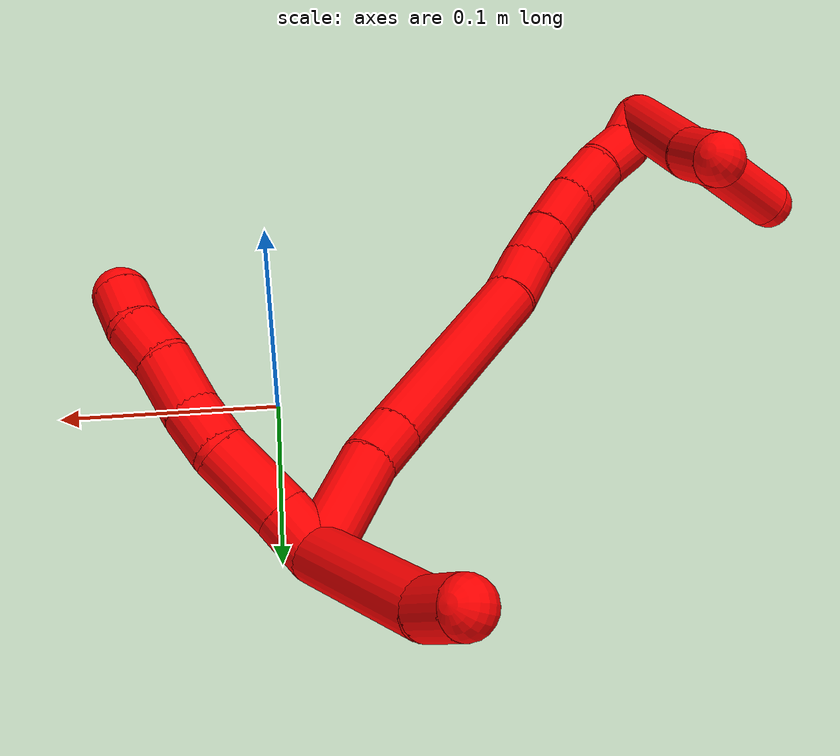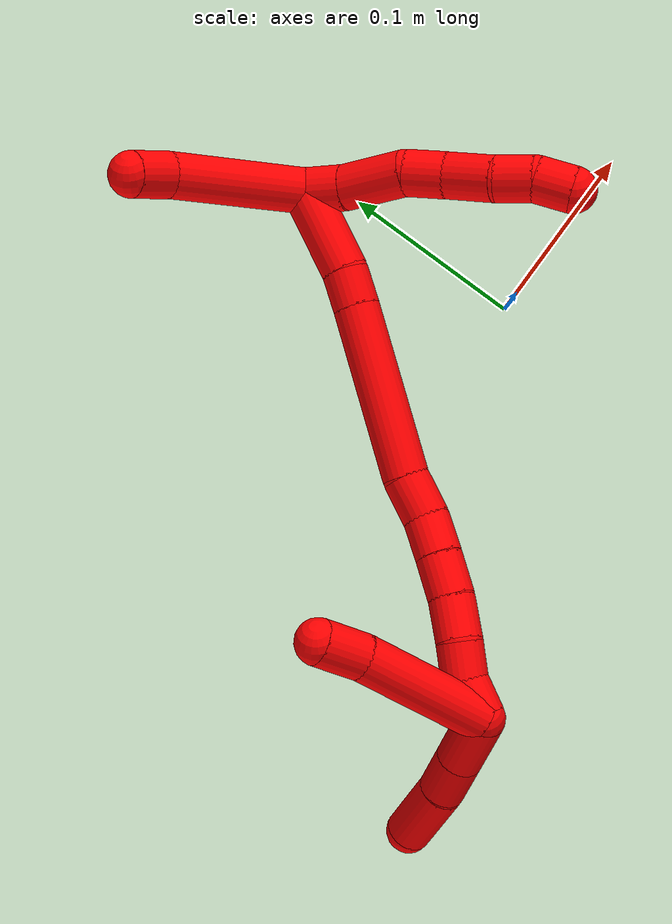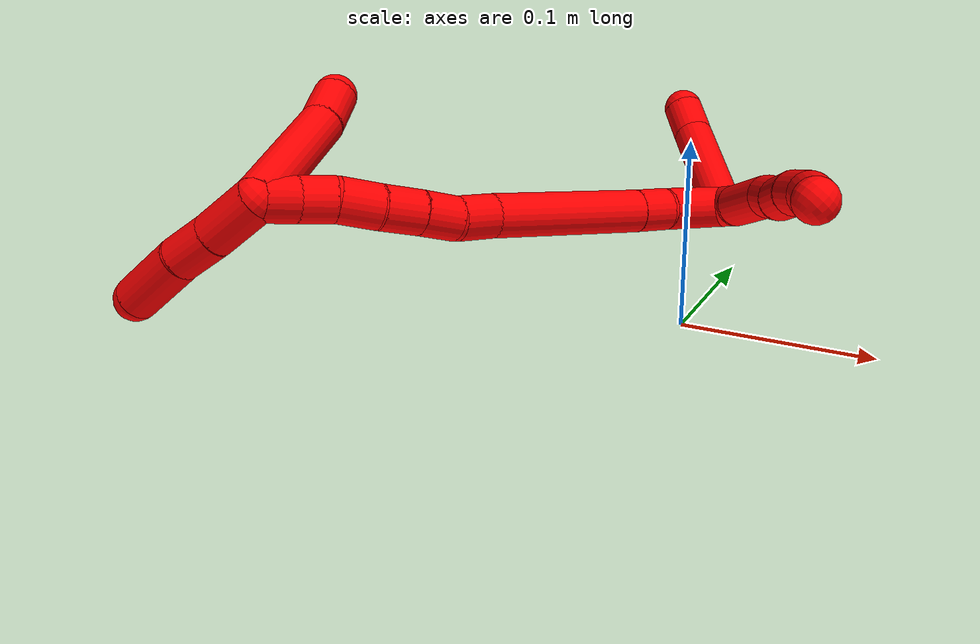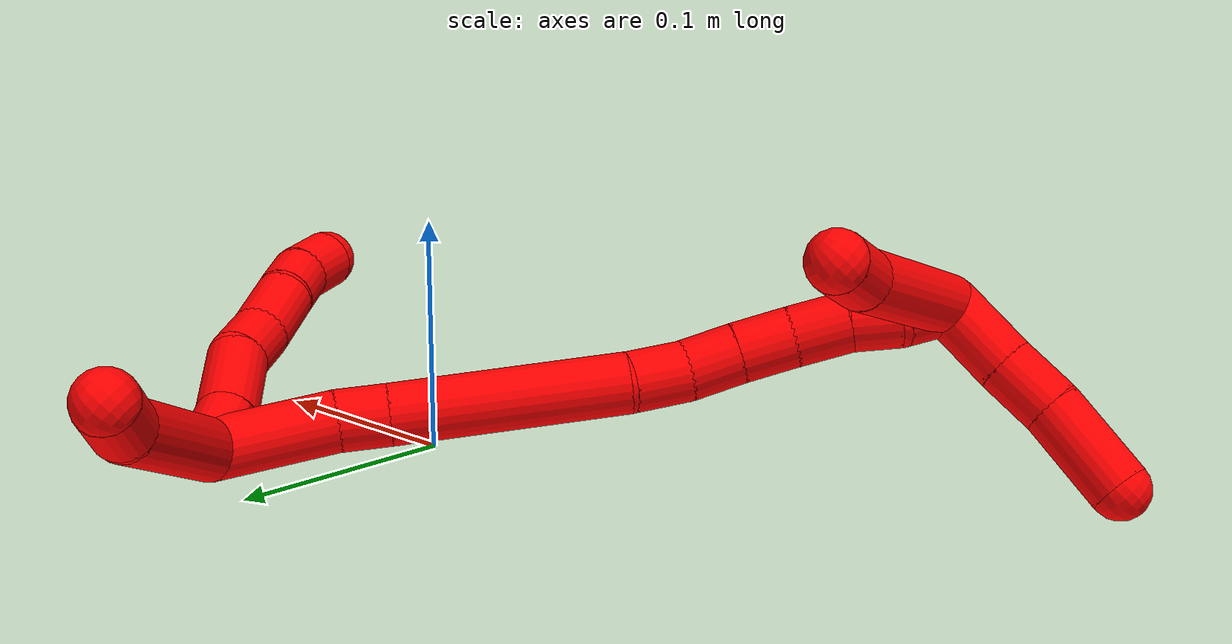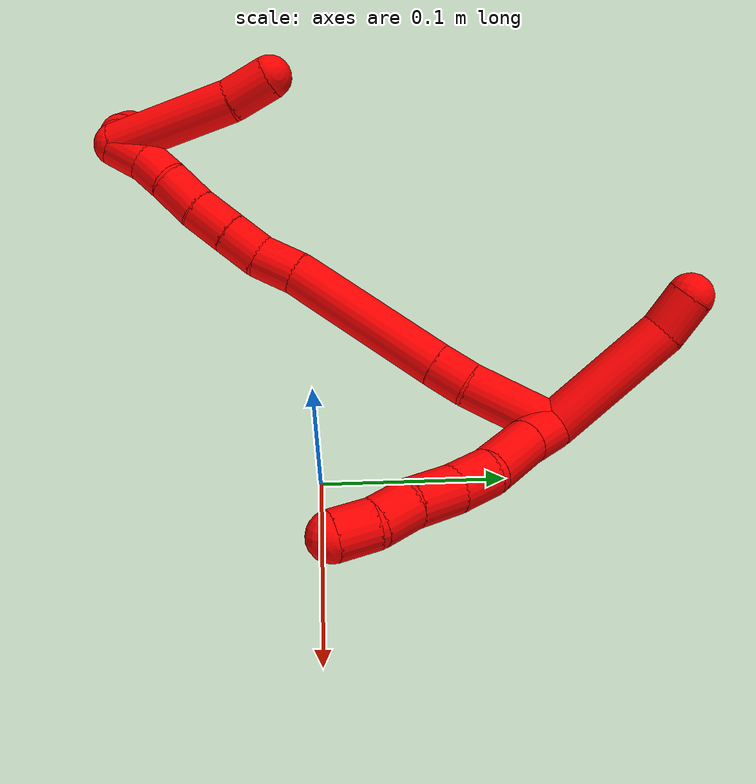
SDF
<sdf version="1.7">
 <world name="default">
  <model name="photoneo_s_sensor">
   <static>1</static>
   <pose>0 0 2 1.57079 1.57079 3.14159</pose>
   <link name="link">
    <inertial><mass>0.1</mass></inertial>
    <sensor name="sensor" type="depth">
     <update_rate>30</update_rate>
     <camera>
      <horizontal_fov>1.22</horizontal_fov>
      <image><width>1920</width><height>1200</height><format>B8G8R8</format></image>
      <clip><near>0.1</near><far>4</far></clip>
      <depth_camera><output>points</output></depth_camera>
     </camera>
     <plugin name="camera_plugin" filename="libgazebo_ros_depth_camera.so">
      <baseline>0.2</baseline>
      <alwaysOn>1</alwaysOn>
      <updateRate>0.0</updateRate>
      <cameraName>camera_ir</cameraName>
      <imageTopicName>/camera/color/image_raw</imageTopicName>
      <cameraInfoTopicName>/camera/color/camera_info</cameraInfoTopicName>
      <depthImageTopicName>/camera/depth/image_raw</depthImageTopicName>
      <depthImageCameraInfoTopicName>/camera/depth/camera_info</depthImageCameraInfoTopicName>
      <pointCloudTopicName>/camera/depth/points</pointCloudTopicName>
      <frameName>fr_optical</frameName>
      <pointCloudCutoff>0.1</pointCloudCutoff>
      <pointCloudCutoffMax>2.0</pointCloudCutoffMax>
      <distortionK1>0</distortionK1>
      <distortionK2>0</distortionK2>
      <distortionK3>0</distortionK3>
      <distortionT1>0</distortionT1>
      <distortionT2>0</distortionT2>
      <CxPrime>0</CxPrime>
      <Cx>0</Cx>
      <Cy>0</Cy>
      <focalLength>0</focalLength>
      <hackBaseline>0</hackBaseline>
     </plugin>
    </sensor>
   </link>
  </model>
  <model name="bin">
   <static>1</static>
   <link name="bottom">
    <collision name="collision-bottom">
     <pose>0 0 -0.01 0 -0 0</pose>
     <geometry><box><size>0.8 0.6 0.02</size></box></geometry>
     <surface>
      <friction><ode><mu>100</mu><mu2>100</mu2></ode></friction>
      <contact><collide_bitmask>65535</collide_bitmask></contact>
     </surface>
    </collision>
   </link>
   <link name="west_wall">
    <collision name="collision-west_wall">
     <pose>-0.41 0 0.1 0 -0 0</pose>
     <geometry><box><size>0.02 0.6 0.2</size></box></geometry>
     <surface>
      <friction><ode><mu>100</mu><mu2>100</mu2></ode></friction>
      <contact><collide_bitmask>65535</collide_bitmask></contact>
     </surface>
    </collision>
   </link>
   <link name="east_wall">
    <collision name="collision-east_wall">
     <pose>0.41 0 0.1 0 -0 0</pose>
     <geometry><box><size>0.02 0.6 0.2</size></box></geometry>
     <surface>
      <friction><ode><mu>100</mu><mu2>100</mu2></ode></friction>
      <contact><collide_bitmask>65535</collide_bitmask></contact>
     </surface>
    </collision>
   </link>
   <link name="south_wall">
    <collision name="collision-south_wall">
     <pose>0 -0.31 0.1 0 -0 0</pose>
     <geometry><box><size>0.8 0.02 0.2</size></box></geometry>
     <surface>
      <friction><ode><mu>100</mu><mu2>100</mu2></ode></friction>
      <contact><collide_bitmask>65535</collide_bitmask></contact>
     </surface>
    </collision>
   </link>
   <link name="north_wall">
    <collision name="collision-north_wall">
     <pose>0 0.31 0.1 0 -0 0</pose>
     <geometry><box><size>0.8 0.02 0.2</size></box></geometry>
     <surface>
      <friction><ode><mu>100</mu><mu2>100</mu2></ode></friction>
      <contact><collide_bitmask>65535</collide_bitmask></contact>
     </surface>
    </collision>
   </link>
  </model>
  <model name="2">
   <static>0</static>
   <link name="2">
    <collision name="collision-cylinder-e_1_2_8">
     <pose>0.006027 -0.009273 -0.002185 1.80219 0.564032 0.701603</pose>
     <geometry><cylinder><radius>0.0125</radius><length>0.022547</length></cylinder></geometry>
     <surface>
      <friction><ode><mu>1.16</mu><mu2>1.16</mu2><slip1>0</slip1><slip2>0</slip2></ode></friction>
      <contact><ode><kp>1e+06</kp><kd>1</kd><max_vel>0</max_vel><min_depth>0.001</min_depth></ode></contact>
     </surface>
    </collision>
    <visual name="visual-cylinder-e_1_2_8">
     <pose>0.006027 -0.009273 -0.002185 1.80219 0.564032 0.701603</pose>
     <geometry><cylinder><radius>0.0125</radius><length>0.022547</length></cylinder></geometry>
     <material><ambient>1 0 0 1</ambient></material>
    </visual>
    <collision name="collision-cylinder-e_2_8_9">
     <pose>0.021125 -0.032661 -0.010888 2.00341 0.528213 0.799918</pose>
     <geometry><cylinder><radius>0.0125</radius><length>0.035999</length></cylinder></geometry>
     <surface>
      <friction><ode><mu>1.16</mu><mu2>1.16</mu2><slip1>0</slip1><slip2>0</slip2></ode></friction>
      <contact><ode><kp>1e+06</kp><kd>1</kd><max_vel>0</max_vel><min_depth>0.001</min_depth></ode></contact>
     </surface>
    </collision>
    <visual name="visual-cylinder-e_2_8_9">
     <pose>0.021125 -0.032661 -0.010888 2.00341 0.528213 0.799918</pose>
     <geometry><cylinder><radius>0.0125</radius><length>0.035999</length></cylinder></geometry>
     <material><ambient>1 0 0 1</ambient></material>
    </visual>
    <collision name="collision-cylinder-e_3_9_10">
     <pose>0.036575 -0.056117 -0.017904 1.62413 0.598414 0.629138</pose>
     <geometry><cylinder><radius>0.0125</radius><length>0.022645</length></cylinder></geometry>
     <surface>
      <friction><ode><mu>1.16</mu><mu2>1.16</mu2><slip1>0</slip1><slip2>0</slip2></ode></friction>
      <contact><ode><kp>1e+06</kp><kd>1</kd><max_vel>0</max_vel><min_depth>0.001</min_depth></ode></contact>
     </surface>
    </collision>
    <visual name="visual-cylinder-e_3_9_10">
     <pose>0.036575 -0.056117 -0.017904 1.62413 0.598414 0.629138</pose>
     <geometry><cylinder><radius>0.0125</radius><length>0.022645</length></cylinder></geometry>
     <material><ambient>1 0 0 1</ambient></material>
    </visual>
    <collision name="collision-cylinder-e_4_10_11">
     <pose>0.052124 -0.075251 -0.020342 1.76628 0.743038 0.885792</pose>
     <geometry><cylinder><radius>0.0125</radius><length>0.027112</length></cylinder></geometry>
     <surface>
      <friction><ode><mu>1.16</mu><mu2>1.16</mu2><slip1>0</slip1><slip2>0</slip2></ode></friction>
      <contact><ode><kp>1e+06</kp><kd>1</kd><max_vel>0</max_vel><min_depth>0.001</min_depth></ode></contact>
     </surface>
    </collision>
    <visual name="visual-cylinder-e_4_10_11">
     <pose>0.052124 -0.075251 -0.020342 1.76628 0.743038 0.885792</pose>
     <geometry><cylinder><radius>0.0125</radius><length>0.027112</length></cylinder></geometry>
     <material><ambient>1 0 0 1</ambient></material>
    </visual>
    <collision name="collision-cylinder-e_5_11_12">
     <pose>0.066941 -0.093852 -0.023356 1.69228 0.566674 0.635472</pose>
     <geometry><cylinder><radius>0.0125</radius><length>0.021036</length></cylinder></geometry>
     <surface>
      <friction><ode><mu>1.16</mu><mu2>1.16</mu2><slip1>0</slip1><slip2>0</slip2></ode></friction>
      <contact><ode><kp>1e+06</kp><kd>1</kd><max_vel>0</max_vel><min_depth>0.001</min_depth></ode></contact>
     </surface>
    </collision>
    <visual name="visual-cylinder-e_5_11_12">
     <pose>0.066941 -0.093852 -0.023356 1.69228 0.566674 0.635472</pose>
     <geometry><cylinder><radius>0.0125</radius><length>0.021036</length></cylinder></geometry>
     <material><ambient>1 0 0 1</ambient></material>
    </visual>
    <collision name="collision-cylinder-e_6_12_6">
     <pose>0.079025 -0.110566 -0.022761 1.36258 0.672671 0.552444</pose>
     <geometry><cylinder><radius>0.0125</radius><length>0.020661</length></cylinder></geometry>
     <surface>
      <friction><ode><mu>1.16</mu><mu2>1.16</mu2><slip1>0</slip1><slip2>0</slip2></ode></friction>
      <contact><ode><kp>1e+06</kp><kd>1</kd><max_vel>0</max_vel><min_depth>0.001</min_depth></ode></contact>
     </surface>
    </collision>
    <visual name="visual-cylinder-e_6_12_6">
     <pose>0.079025 -0.110566 -0.022761 1.36258 0.672671 0.552444</pose>
     <geometry><cylinder><radius>0.0125</radius><length>0.020661</length></cylinder></geometry>
     <material><ambient>1 0 0 1</ambient></material>
    </visual>
    <collision name="collision-cylinder-e_1_2_13">
     <pose>-0.004127 0.035588 -0.013418 -1.93134 -0.108081 0.156092</pose>
     <geometry><cylinder><radius>0.0125</radius><length>0.076514</length></cylinder></geometry>
     <surface>
      <friction><ode><mu>1.16</mu><mu2>1.16</mu2><slip1>0</slip1><slip2>0</slip2></ode></friction>
      <contact><ode><kp>1e+06</kp><kd>1</kd><max_vel>0</max_vel><min_depth>0.001</min_depth></ode></contact>
     </surface>
    </collision>
    <visual name="visual-cylinder-e_1_2_13">
     <pose>-0.004127 0.035588 -0.013418 -1.93134 -0.108081 0.156092</pose>
     <geometry><cylinder><radius>0.0125</radius><length>0.076514</length></cylinder></geometry>
     <material><ambient>1 0 0 1</ambient></material>
    </visual>
    <collision name="collision-cylinder-e_2_13_5">
     <pose>-0.005956 0.0816 -0.031732 -2.00996 0.196928 -0.308618</pose>
     <geometry><cylinder><radius>0.0125</radius><length>0.023486</length></cylinder></geometry>
     <surface>
      <friction><ode><mu>1.16</mu><mu2>1.16</mu2><slip1>0</slip1><slip2>0</slip2></ode></friction>
      <contact><ode><kp>1e+06</kp><kd>1</kd><max_vel>0</max_vel><min_depth>0.001</min_depth></ode></contact>
     </surface>
    </collision>
    <visual name="visual-cylinder-e_2_13_5">
     <pose>-0.005956 0.0816 -0.031732 -2.00996 0.196928 -0.308618</pose>
     <geometry><cylinder><radius>0.0125</radius><length>0.023486</length></cylinder></geometry>
     <material><ambient>1 0 0 1</ambient></material>
    </visual>
    <collision name="collision-cylinder-e_1_2_14">
     <pose>0.020476 -0.00294 0.013821 0.209629 0.96675 0.110329</pose>
     <geometry><cylinder><radius>0.0125</radius><length>0.049757</length></cylinder></geometry>
     <surface>
      <friction><ode><mu>1.16</mu><mu2>1.16</mu2><slip1>0</slip1><slip2>0</slip2></ode></friction>
      <contact><ode><kp>1e+06</kp><kd>1</kd><max_vel>0</max_vel><min_depth>0.001</min_depth></ode></contact>
     </surface>
    </collision>
    <visual name="visual-cylinder-e_1_2_14">
     <pose>0.020476 -0.00294 0.013821 0.209629 0.96675 0.110329</pose>
     <geometry><cylinder><radius>0.0125</radius><length>0.049757</length></cylinder></geometry>
     <material><ambient>1 0 0 1</ambient></material>
    </visual>
    <collision name="collision-cylinder-e_2_14_15">
     <pose>0.048908 -0.005764 0.034232 -0.017764 0.878896 -0.008351</pose>
     <geometry><cylinder><radius>0.0125</radius><length>0.020663</length></cylinder></geometry>
     <surface>
      <friction><ode><mu>1.16</mu><mu2>1.16</mu2><slip1>0</slip1><slip2>0</slip2></ode></friction>
      <contact><ode><kp>1e+06</kp><kd>1</kd><max_vel>0</max_vel><min_depth>0.001</min_depth></ode></contact>
     </surface>
    </collision>
    <visual name="visual-cylinder-e_2_14_15">
     <pose>0.048908 -0.005764 0.034232 -0.017764 0.878896 -0.008351</pose>
     <geometry><cylinder><radius>0.0125</radius><length>0.020663</length></cylinder></geometry>
     <material><ambient>1 0 0 1</ambient></material>
    </visual>
    <collision name="collision-cylinder-e_3_15_16">
     <pose>0.093904 -0.003799 0.070558 -0.062056 0.893424 -0.029733</pose>
     <geometry><cylinder><radius>0.0125</radius><length>0.095071</length></cylinder></geometry>
     <surface>
      <friction><ode><mu>1.16</mu><mu2>1.16</mu2><slip1>0</slip1><slip2>0</slip2></ode></friction>
      <contact><ode><kp>1e+06</kp><kd>1</kd><max_vel>0</max_vel><min_depth>0.001</min_depth></ode></contact>
     </surface>
    </collision>
    <visual name="visual-cylinder-e_3_15_16">
     <pose>0.093904 -0.003799 0.070558 -0.062056 0.893424 -0.029733</pose>
     <geometry><cylinder><radius>0.0125</radius><length>0.095071</length></cylinder></geometry>
     <material><ambient>1 0 0 1</ambient></material>
    </visual>
    <collision name="collision-cylinder-e_4_16_17">
     <pose>0.140652 -0.003583 0.107229 0.231103 0.937665 0.117442</pose>
     <geometry><cylinder><radius>0.0125</radius><length>0.024082</length></cylinder></geometry>
     <surface>
      <friction><ode><mu>1.16</mu><mu2>1.16</mu2><slip1>0</slip1><slip2>0</slip2></ode></friction>
      <contact><ode><kp>1e+06</kp><kd>1</kd><max_vel>0</max_vel><min_depth>0.001</min_depth></ode></contact>
     </surface>
    </collision>
    <visual name="visual-cylinder-e_4_16_17">
     <pose>0.140652 -0.003583 0.107229 0.231103 0.937665 0.117442</pose>
     <geometry><cylinder><radius>0.0125</radius><length>0.024082</length></cylinder></geometry>
     <material><ambient>1 0 0 1</ambient></material>
    </visual>
    <collision name="collision-cylinder-e_5_17_18">
     <pose>0.160124 -0.004621 0.119229 -0.116685 1.08945 -0.070747</pose>
     <geometry><cylinder><radius>0.0125</radius><length>0.022033</length></cylinder></geometry>
     <surface>
      <friction><ode><mu>1.16</mu><mu2>1.16</mu2><slip1>0</slip1><slip2>0</slip2></ode></friction>
      <contact><ode><kp>1e+06</kp><kd>1</kd><max_vel>0</max_vel><min_depth>0.001</min_depth></ode></contact>
     </surface>
    </collision>
    <visual name="visual-cylinder-e_5_17_18">
     <pose>0.160124 -0.004621 0.119229 -0.116685 1.08945 -0.070747</pose>
     <geometry><cylinder><radius>0.0125</radius><length>0.022033</length></cylinder></geometry>
     <material><ambient>1 0 0 1</ambient></material>
    </visual>
    <collision name="collision-cylinder-e_6_18_19">
     <pose>0.179955 -0.003243 0.130041 -0.135703 1.04816 -0.078515</pose>
     <geometry><cylinder><radius>0.0125</radius><length>0.023235</length></cylinder></geometry>
     <surface>
      <friction><ode><mu>1.16</mu><mu2>1.16</mu2><slip1>0</slip1><slip2>0</slip2></ode></friction>
      <contact><ode><kp>1e+06</kp><kd>1</kd><max_vel>0</max_vel><min_depth>0.001</min_depth></ode></contact>
     </surface>
    </collision>
    <visual name="visual-cylinder-e_6_18_19">
     <pose>0.179955 -0.003243 0.130041 -0.135703 1.04816 -0.078515</pose>
     <geometry><cylinder><radius>0.0125</radius><length>0.023235</length></cylinder></geometry>
     <material><ambient>1 0 0 1</ambient></material>
    </visual>
    <collision name="collision-cylinder-e_7_19_20">
     <pose>0.200057 -0.000334 0.141699 -0.34497 1.01147 -0.192356</pose>
     <geometry><cylinder><radius>0.0125</radius><length>0.023681</length></cylinder></geometry>
     <surface>
      <friction><ode><mu>1.16</mu><mu2>1.16</mu2><slip1>0</slip1><slip2>0</slip2></ode></friction>
      <contact><ode><kp>1e+06</kp><kd>1</kd><max_vel>0</max_vel><min_depth>0.001</min_depth></ode></contact>
     </surface>
    </collision>
    <visual name="visual-cylinder-e_7_19_20">
     <pose>0.200057 -0.000334 0.141699 -0.34497 1.01147 -0.192356</pose>
     <geometry><cylinder><radius>0.0125</radius><length>0.023681</length></cylinder></geometry>
     <material><ambient>1 0 0 1</ambient></material>
    </visual>
    <collision name="collision-cylinder-e_8_20_21">
     <pose>0.217677 0.003596 0.154231 -0.266299 0.835364 -0.118746</pose>
     <geometry><cylinder><radius>0.0125</radius><length>0.020453</length></cylinder></geometry>
     <surface>
      <friction><ode><mu>1.16</mu><mu2>1.16</mu2><slip1>0</slip1><slip2>0</slip2></ode></friction>
      <contact><ode><kp>1e+06</kp><kd>1</kd><max_vel>0</max_vel><min_depth>0.001</min_depth></ode></contact>
     </surface>
    </collision>
    <visual name="visual-cylinder-e_8_20_21">
     <pose>0.217677 0.003596 0.154231 -0.266299 0.835364 -0.118746</pose>
     <geometry><cylinder><radius>0.0125</radius><length>0.020453</length></cylinder></geometry>
     <material><ambient>1 0 0 1</ambient></material>
    </visual>
    <collision name="collision-cylinder-e_9_21_1">
     <pose>0.234121 0.004534 0.166441 0.153997 1.00253 0.084499</pose>
     <geometry><cylinder><radius>0.0125</radius><length>0.021026</length></cylinder></geometry>
     <surface>
      <friction><ode><mu>1.16</mu><mu2>1.16</mu2><slip1>0</slip1><slip2>0</slip2></ode></friction>
      <contact><ode><kp>1e+06</kp><kd>1</kd><max_vel>0</max_vel><min_depth>0.001</min_depth></ode></contact>
     </surface>
    </collision>
    <visual name="visual-cylinder-e_9_21_1">
     <pose>0.234121 0.004534 0.166441 0.153997 1.00253 0.084499</pose>
     <geometry><cylinder><radius>0.0125</radius><length>0.021026</length></cylinder></geometry>
     <material><ambient>1 0 0 1</ambient></material>
    </visual>
    <collision name="collision-cylinder-e_1_1_22">
     <pose>0.2289 0.030278 0.150578 -2.24928 -0.390777 0.784631</pose>
     <geometry><cylinder><radius>0.0125</radius><length>0.07394</length></cylinder></geometry>
     <surface>
      <friction><ode><mu>1.16</mu><mu2>1.16</mu2><slip1>0</slip1><slip2>0</slip2></ode></friction>
      <contact><ode><kp>1e+06</kp><kd>1</kd><max_vel>0</max_vel><min_depth>0.001</min_depth></ode></contact>
     </surface>
    </collision>
    <visual name="visual-cylinder-e_1_1_22">
     <pose>0.2289 0.030278 0.150578 -2.24928 -0.390777 0.784631</pose>
     <geometry><cylinder><radius>0.0125</radius><length>0.07394</length></cylinder></geometry>
     <material><ambient>1 0 0 1</ambient></material>
    </visual>
    <collision name="collision-cylinder-e_2_22_4">
     <pose>0.211812 0.067218 0.12177 -2.18962 -0.23277 0.446031</pose>
     <geometry><cylinder><radius>0.0125</radius><length>0.02606</length></cylinder></geometry>
     <surface>
      <friction><ode><mu>1.16</mu><mu2>1.16</mu2><slip1>0</slip1><slip2>0</slip2></ode></friction>
      <contact><ode><kp>1e+06</kp><kd>1</kd><max_vel>0</max_vel><min_depth>0.001</min_depth></ode></contact>
     </surface>
    </collision>
    <visual name="visual-cylinder-e_2_22_4">
     <pose>0.211812 0.067218 0.12177 -2.18962 -0.23277 0.446031</pose>
     <geometry><cylinder><radius>0.0125</radius><length>0.02606</length></cylinder></geometry>
     <material><ambient>1 0 0 1</ambient></material>
    </visual>
    <collision name="collision-cylinder-e_1_1_23">
     <pose>0.241339 0.009608 0.187688 -0.362721 -0.097753 0.017939</pose>
     <geometry><cylinder><radius>0.0125</radius><length>0.033652</length></cylinder></geometry>
     <surface>
      <friction><ode><mu>1.16</mu><mu2>1.16</mu2><slip1>0</slip1><slip2>0</slip2></ode></friction>
      <contact><ode><kp>1e+06</kp><kd>1</kd><max_vel>0</max_vel><min_depth>0.001</min_depth></ode></contact>
     </surface>
    </collision>
    <visual name="visual-cylinder-e_1_1_23">
     <pose>0.241339 0.009608 0.187688 -0.362721 -0.097753 0.017939</pose>
     <geometry><cylinder><radius>0.0125</radius><length>0.033652</length></cylinder></geometry>
     <material><ambient>1 0 0 1</ambient></material>
    </visual>
    <collision name="collision-cylinder-e_2_23_24">
     <pose>0.239006 0.020567 0.214933 -0.40857 -0.054677 0.01133</pose>
     <geometry><cylinder><radius>0.0125</radius><length>0.025296</length></cylinder></geometry>
     <surface>
      <friction><ode><mu>1.16</mu><mu2>1.16</mu2><slip1>0</slip1><slip2>0</slip2></ode></friction>
      <contact><ode><kp>1e+06</kp><kd>1</kd><max_vel>0</max_vel><min_depth>0.001</min_depth></ode></contact>
     </surface>
    </collision>
    <visual name="visual-cylinder-e_2_23_24">
     <pose>0.239006 0.020567 0.214933 -0.40857 -0.054677 0.01133</pose>
     <geometry><cylinder><radius>0.0125</radius><length>0.025296</length></cylinder></geometry>
     <material><ambient>1 0 0 1</ambient></material>
    </visual>
    <collision name="collision-cylinder-e_3_24_3">
     <pose>0.234532 0.034098 0.244813 -0.435644 -0.185333 0.041132</pose>
     <geometry><cylinder><radius>0.0125</radius><length>0.041052</length></cylinder></geometry>
     <surface>
      <friction><ode><mu>1.16</mu><mu2>1.16</mu2><slip1>0</slip1><slip2>0</slip2></ode></friction>
      <contact><ode><kp>1e+06</kp><kd>1</kd><max_vel>0</max_vel><min_depth>0.001</min_depth></ode></contact>
     </surface>
    </collision>
    <visual name="visual-cylinder-e_3_24_3">
     <pose>0.234532 0.034098 0.244813 -0.435644 -0.185333 0.041132</pose>
     <geometry><cylinder><radius>0.0125</radius><length>0.041052</length></cylinder></geometry>
     <material><ambient>1 0 0 1</ambient></material>
    </visual>
    <collision name="collision-sphere-3">
     <pose>0.23075 0.042611 0.263103 0 -0 0</pose>
     <geometry><sphere><radius>0.0125</radius></sphere></geometry>
     <surface>
      <friction><ode><mu>1.16</mu><mu2>1.16</mu2><slip1>0</slip1><slip2>0</slip2></ode></friction>
      <contact><ode><kp>1e+06</kp><kd>1</kd><max_vel>0</max_vel><min_depth>0.001</min_depth></ode></contact>
     </surface>
    </collision>
    <visual name="visual-sphere-3">
     <pose>0.23075 0.042611 0.263103 0 -0 0</pose>
     <geometry><sphere><radius>0.0125</radius></sphere></geometry>
     <material><ambient>1 0 0 1</ambient></material>
    </visual>
    <collision name="collision-sphere-24">
     <pose>0.238315 0.025584 0.226523 0 -0 0</pose>
     <geometry><sphere><radius>0.0125</radius></sphere></geometry>
     <surface>
      <friction><ode><mu>1.16</mu><mu2>1.16</mu2><slip1>0</slip1><slip2>0</slip2></ode></friction>
      <contact><ode><kp>1e+06</kp><kd>1</kd><max_vel>0</max_vel><min_depth>0.001</min_depth></ode></contact>
     </surface>
    </collision>
    <visual name="visual-sphere-24">
     <pose>0.238315 0.025584 0.226523 0 -0 0</pose>
     <geometry><sphere><radius>0.0125</radius></sphere></geometry>
     <material><ambient>1 0 0 1</ambient></material>
    </visual>
    <collision name="collision-sphere-23">
     <pose>0.239697 0.015549 0.203344 0 -0 0</pose>
     <geometry><sphere><radius>0.0125</radius></sphere></geometry>
     <surface>
      <friction><ode><mu>1.16</mu><mu2>1.16</mu2><slip1>0</slip1><slip2>0</slip2></ode></friction>
      <contact><ode><kp>1e+06</kp><kd>1</kd><max_vel>0</max_vel><min_depth>0.001</min_depth></ode></contact>
     </surface>
    </collision>
    <visual name="visual-sphere-23">
     <pose>0.239697 0.015549 0.203344 0 -0 0</pose>
     <geometry><sphere><radius>0.0125</radius></sphere></geometry>
     <material><ambient>1 0 0 1</ambient></material>
    </visual>
    <collision name="collision-sphere-4">
     <pose>0.208806 0.077546 0.114415 0 -0 0</pose>
     <geometry><sphere><radius>0.0125</radius></sphere></geometry>
     <surface>
      <friction><ode><mu>1.16</mu><mu2>1.16</mu2><slip1>0</slip1><slip2>0</slip2></ode></friction>
      <contact><ode><kp>1e+06</kp><kd>1</kd><max_vel>0</max_vel><min_depth>0.001</min_depth></ode></contact>
     </surface>
    </collision>
    <visual name="visual-sphere-4">
     <pose>0.208806 0.077546 0.114415 0 -0 0</pose>
     <geometry><sphere><radius>0.0125</radius></sphere></geometry>
     <material><ambient>1 0 0 1</ambient></material>
    </visual>
    <collision name="collision-sphere-22">
     <pose>0.214818 0.05689 0.129124 0 -0 0</pose>
     <geometry><sphere><radius>0.0125</radius></sphere></geometry>
     <surface>
      <friction><ode><mu>1.16</mu><mu2>1.16</mu2><slip1>0</slip1><slip2>0</slip2></ode></friction>
      <contact><ode><kp>1e+06</kp><kd>1</kd><max_vel>0</max_vel><min_depth>0.001</min_depth></ode></contact>
     </surface>
    </collision>
    <visual name="visual-sphere-22">
     <pose>0.214818 0.05689 0.129124 0 -0 0</pose>
     <geometry><sphere><radius>0.0125</radius></sphere></geometry>
     <material><ambient>1 0 0 1</ambient></material>
    </visual>
    <collision name="collision-sphere-1">
     <pose>0.242982 0.003666 0.172031 0 -0 0</pose>
     <geometry><sphere><radius>0.0125</radius></sphere></geometry>
     <surface>
      <friction><ode><mu>1.16</mu><mu2>1.16</mu2><slip1>0</slip1><slip2>0</slip2></ode></friction>
      <contact><ode><kp>1e+06</kp><kd>1</kd><max_vel>0</max_vel><min_depth>0.001</min_depth></ode></contact>
     </surface>
    </collision>
    <visual name="visual-sphere-1">
     <pose>0.242982 0.003666 0.172031 0 -0 0</pose>
     <geometry><sphere><radius>0.0125</radius></sphere></geometry>
     <material><ambient>1 0 0 1</ambient></material>
    </visual>
    <collision name="collision-sphere-21">
     <pose>0.22526 0.005402 0.16085 0 -0 0</pose>
     <geometry><sphere><radius>0.0125</radius></sphere></geometry>
     <surface>
      <friction><ode><mu>1.16</mu><mu2>1.16</mu2><slip1>0</slip1><slip2>0</slip2></ode></friction>
      <contact><ode><kp>1e+06</kp><kd>1</kd><max_vel>0</max_vel><min_depth>0.001</min_depth></ode></contact>
     </surface>
    </collision>
    <visual name="visual-sphere-21">
     <pose>0.22526 0.005402 0.16085 0 -0 0</pose>
     <geometry><sphere><radius>0.0125</radius></sphere></geometry>
     <material><ambient>1 0 0 1</ambient></material>
    </visual>
    <collision name="collision-sphere-12">
     <pose>0.072588 -0.102661 -0.024432 0 -0 0</pose>
     <geometry><sphere><radius>0.0125</radius></sphere></geometry>
     <surface>
      <friction><ode><mu>1.16</mu><mu2>1.16</mu2><slip1>0</slip1><slip2>0</slip2></ode></friction>
      <contact><ode><kp>1e+06</kp><kd>1</kd><max_vel>0</max_vel><min_depth>0.001</min_depth></ode></contact>
     </surface>
    </collision>
    <visual name="visual-sphere-12">
     <pose>0.072588 -0.102661 -0.024432 0 -0 0</pose>
     <geometry><sphere><radius>0.0125</radius></sphere></geometry>
     <material><ambient>1 0 0 1</ambient></material>
    </visual>
    <collision name="collision-sphere-11">
     <pose>0.061295 -0.085043 -0.022281 0 -0 0</pose>
     <geometry><sphere><radius>0.0125</radius></sphere></geometry>
     <surface>
      <friction><ode><mu>1.16</mu><mu2>1.16</mu2><slip1>0</slip1><slip2>0</slip2></ode></friction>
      <contact><ode><kp>1e+06</kp><kd>1</kd><max_vel>0</max_vel><min_depth>0.001</min_depth></ode></contact>
     </surface>
    </collision>
    <visual name="visual-sphere-11">
     <pose>0.061295 -0.085043 -0.022281 0 -0 0</pose>
     <geometry><sphere><radius>0.0125</radius></sphere></geometry>
     <material><ambient>1 0 0 1</ambient></material>
    </visual>
    <collision name="collision-sphere-10">
     <pose>0.042953 -0.065458 -0.018403 0 -0 0</pose>
     <geometry><sphere><radius>0.0125</radius></sphere></geometry>
     <surface>
      <friction><ode><mu>1.16</mu><mu2>1.16</mu2><slip1>0</slip1><slip2>0</slip2></ode></friction>
      <contact><ode><kp>1e+06</kp><kd>1</kd><max_vel>0</max_vel><min_depth>0.001</min_depth></ode></contact>
     </surface>
    </collision>
    <visual name="visual-sphere-10">
     <pose>0.042953 -0.065458 -0.018403 0 -0 0</pose>
     <geometry><sphere><radius>0.0125</radius></sphere></geometry>
     <material><ambient>1 0 0 1</ambient></material>
    </visual>
    <collision name="collision-sphere-9">
     <pose>0.030197 -0.046775 -0.017405 0 -0 0</pose>
     <geometry><sphere><radius>0.0125</radius></sphere></geometry>
     <surface>
      <friction><ode><mu>1.16</mu><mu2>1.16</mu2><slip1>0</slip1><slip2>0</slip2></ode></friction>
      <contact><ode><kp>1e+06</kp><kd>1</kd><max_vel>0</max_vel><min_depth>0.001</min_depth></ode></contact>
     </surface>
    </collision>
    <visual name="visual-sphere-9">
     <pose>0.030197 -0.046775 -0.017405 0 -0 0</pose>
     <geometry><sphere><radius>0.0125</radius></sphere></geometry>
     <material><ambient>1 0 0 1</ambient></material>
    </visual>
    <collision name="collision-sphere-2">
     <geometry><sphere><radius>0.0125</radius></sphere></geometry>
     <surface>
      <friction><ode><mu>1.16</mu><mu2>1.16</mu2><slip1>0</slip1><slip2>0</slip2></ode></friction>
      <contact><ode><kp>1e+06</kp><kd>1</kd><max_vel>0</max_vel><min_depth>0.001</min_depth></ode></contact>
     </surface>
    </collision>
    <visual name="visual-sphere-2">
     <geometry><sphere><radius>0.0125</radius></sphere></geometry>
     <material><ambient>1 0 0 1</ambient></material>
    </visual>
    <collision name="collision-sphere-19">
     <pose>0.190021 -0.002459 0.135786 0 -0 0</pose>
     <geometry><sphere><radius>0.0125</radius></sphere></geometry>
     <surface>
      <friction><ode><mu>1.16</mu><mu2>1.16</mu2><slip1>0</slip1><slip2>0</slip2></ode></friction>
      <contact><ode><kp>1e+06</kp><kd>1</kd><max_vel>0</max_vel><min_depth>0.001</min_depth></ode></contact>
     </surface>
    </collision>
    <visual name="visual-sphere-19">
     <pose>0.190021 -0.002459 0.135786 0 -0 0</pose>
     <geometry><sphere><radius>0.0125</radius></sphere></geometry>
     <material><ambient>1 0 0 1</ambient></material>
    </visual>
    <collision name="collision-sphere-8">
     <pose>0.012054 -0.018547 -0.00437 0 -0 0</pose>
     <geometry><sphere><radius>0.0125</radius></sphere></geometry>
     <surface>
      <friction><ode><mu>1.16</mu><mu2>1.16</mu2><slip1>0</slip1><slip2>0</slip2></ode></friction>
      <contact><ode><kp>1e+06</kp><kd>1</kd><max_vel>0</max_vel><min_depth>0.001</min_depth></ode></contact>
     </surface>
    </collision>
    <visual name="visual-sphere-8">
     <pose>0.012054 -0.018547 -0.00437 0 -0 0</pose>
     <geometry><sphere><radius>0.0125</radius></sphere></geometry>
     <material><ambient>1 0 0 1</ambient></material>
    </visual>
    <collision name="collision-sphere-6">
     <pose>0.085462 -0.118472 -0.021091 0 -0 0</pose>
     <geometry><sphere><radius>0.0125</radius></sphere></geometry>
     <surface>
      <friction><ode><mu>1.16</mu><mu2>1.16</mu2><slip1>0</slip1><slip2>0</slip2></ode></friction>
      <contact><ode><kp>1e+06</kp><kd>1</kd><max_vel>0</max_vel><min_depth>0.001</min_depth></ode></contact>
     </surface>
    </collision>
    <visual name="visual-sphere-6">
     <pose>0.085462 -0.118472 -0.021091 0 -0 0</pose>
     <geometry><sphere><radius>0.0125</radius></sphere></geometry>
     <material><ambient>1 0 0 1</ambient></material>
    </visual>
    <collision name="collision-sphere-13">
     <pose>-0.008254 0.071177 -0.026836 0 -0 0</pose>
     <geometry><sphere><radius>0.0125</radius></sphere></geometry>
     <surface>
      <friction><ode><mu>1.16</mu><mu2>1.16</mu2><slip1>0</slip1><slip2>0</slip2></ode></friction>
      <contact><ode><kp>1e+06</kp><kd>1</kd><max_vel>0</max_vel><min_depth>0.001</min_depth></ode></contact>
     </surface>
    </collision>
    <visual name="visual-sphere-13">
     <pose>-0.008254 0.071177 -0.026836 0 -0 0</pose>
     <geometry><sphere><radius>0.0125</radius></sphere></geometry>
     <material><ambient>1 0 0 1</ambient></material>
    </visual>
    <collision name="collision-sphere-5">
     <pose>-0.003658 0.092023 -0.036629 0 -0 0</pose>
     <geometry><sphere><radius>0.0125</radius></sphere></geometry>
     <surface>
      <friction><ode><mu>1.16</mu><mu2>1.16</mu2><slip1>0</slip1><slip2>0</slip2></ode></friction>
      <contact><ode><kp>1e+06</kp><kd>1</kd><max_vel>0</max_vel><min_depth>0.001</min_depth></ode></contact>
     </surface>
    </collision>
    <visual name="visual-sphere-5">
     <pose>-0.003658 0.092023 -0.036629 0 -0 0</pose>
     <geometry><sphere><radius>0.0125</radius></sphere></geometry>
     <material><ambient>1 0 0 1</ambient></material>
    </visual>
    <collision name="collision-sphere-14">
     <pose>0.040952 -0.005881 0.027642 0 -0 0</pose>
     <geometry><sphere><radius>0.0125</radius></sphere></geometry>
     <surface>
      <friction><ode><mu>1.16</mu><mu2>1.16</mu2><slip1>0</slip1><slip2>0</slip2></ode></friction>
      <contact><ode><kp>1e+06</kp><kd>1</kd><max_vel>0</max_vel><min_depth>0.001</min_depth></ode></contact>
     </surface>
    </collision>
    <visual name="visual-sphere-14">
     <pose>0.040952 -0.005881 0.027642 0 -0 0</pose>
     <geometry><sphere><radius>0.0125</radius></sphere></geometry>
     <material><ambient>1 0 0 1</ambient></material>
    </visual>
    <collision name="collision-sphere-15">
     <pose>0.056863 -0.005647 0.040823 0 -0 0</pose>
     <geometry><sphere><radius>0.0125</radius></sphere></geometry>
     <surface>
      <friction><ode><mu>1.16</mu><mu2>1.16</mu2><slip1>0</slip1><slip2>0</slip2></ode></friction>
      <contact><ode><kp>1e+06</kp><kd>1</kd><max_vel>0</max_vel><min_depth>0.001</min_depth></ode></contact>
     </surface>
    </collision>
    <visual name="visual-sphere-15">
     <pose>0.056863 -0.005647 0.040823 0 -0 0</pose>
     <geometry><sphere><radius>0.0125</radius></sphere></geometry>
     <material><ambient>1 0 0 1</ambient></material>
    </visual>
    <collision name="collision-sphere-16">
     <pose>0.130945 -0.001952 0.100294 0 -0 0</pose>
     <geometry><sphere><radius>0.0125</radius></sphere></geometry>
     <surface>
      <friction><ode><mu>1.16</mu><mu2>1.16</mu2><slip1>0</slip1><slip2>0</slip2></ode></friction>
      <contact><ode><kp>1e+06</kp><kd>1</kd><max_vel>0</max_vel><min_depth>0.001</min_depth></ode></contact>
     </surface>
    </collision>
    <visual name="visual-sphere-16">
     <pose>0.130945 -0.001952 0.100294 0 -0 0</pose>
     <geometry><sphere><radius>0.0125</radius></sphere></geometry>
     <material><ambient>1 0 0 1</ambient></material>
    </visual>
    <collision name="collision-sphere-17">
     <pose>0.150359 -0.005215 0.114164 0 -0 0</pose>
     <geometry><sphere><radius>0.0125</radius></sphere></geometry>
     <surface>
      <friction><ode><mu>1.16</mu><mu2>1.16</mu2><slip1>0</slip1><slip2>0</slip2></ode></friction>
      <contact><ode><kp>1e+06</kp><kd>1</kd><max_vel>0</max_vel><min_depth>0.001</min_depth></ode></contact>
     </surface>
    </collision>
    <visual name="visual-sphere-17">
     <pose>0.150359 -0.005215 0.114164 0 -0 0</pose>
     <geometry><sphere><radius>0.0125</radius></sphere></geometry>
     <material><ambient>1 0 0 1</ambient></material>
    </visual>
    <collision name="collision-sphere-18">
     <pose>0.169889 -0.004028 0.124295 0 -0 0</pose>
     <geometry><sphere><radius>0.0125</radius></sphere></geometry>
     <surface>
      <friction><ode><mu>1.16</mu><mu2>1.16</mu2><slip1>0</slip1><slip2>0</slip2></ode></friction>
      <contact><ode><kp>1e+06</kp><kd>1</kd><max_vel>0</max_vel><min_depth>0.001</min_depth></ode></contact>
     </surface>
    </collision>
    <visual name="visual-sphere-18">
     <pose>0.169889 -0.004028 0.124295 0 -0 0</pose>
     <geometry><sphere><radius>0.0125</radius></sphere></geometry>
     <material><ambient>1 0 0 1</ambient></material>
    </visual>
    <collision name="collision-sphere-20">
     <pose>0.210093 0.001791 0.147612 0 -0 0</pose>
     <geometry><sphere><radius>0.0125</radius></sphere></geometry>
     <surface>
      <friction><ode><mu>1.16</mu><mu2>1.16</mu2><slip1>0</slip1><slip2>0</slip2></ode></friction>
      <contact><ode><kp>1e+06</kp><kd>1</kd><max_vel>0</max_vel><min_depth>0.001</min_depth></ode></contact>
     </surface>
    </collision>
    <visual name="visual-sphere-20">
     <pose>0.210093 0.001791 0.147612 0 -0 0</pose>
     <geometry><sphere><radius>0.0125</radius></sphere></geometry>
     <material><ambient>1 0 0 1</ambient></material>
    </visual>
    <inertial>
     <pose>0.117505 0.001586 0.077762 0 -0 0</pose>
     <mass>0.75</mass>
     <inertia>
      <ixx>0.000212</ixx>
      <ixy>0</ixy>
      <ixz>0</ixz>
      <iyy>0.000137</iyy>
      <iyz>0</iyz>
      <izz>-0.000119</izz>
     </inertia>
    </inertial>
   </link>
   <pose>-0.015068 0.124325 0.03016 2.82066 -0.743544 -1.99234</pose>
  </model>
 </world>
</sdf>
